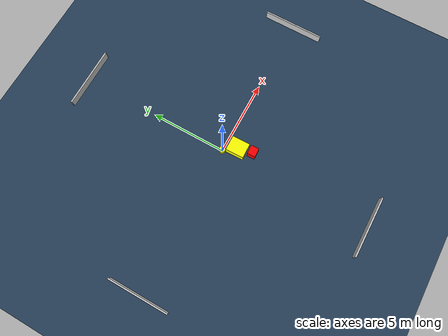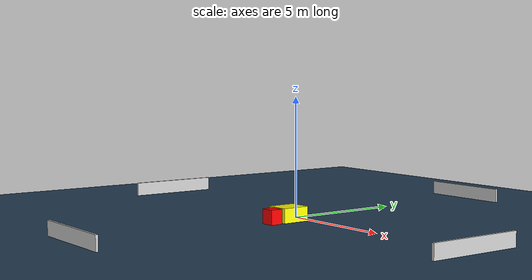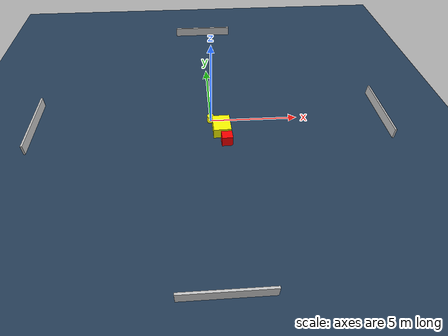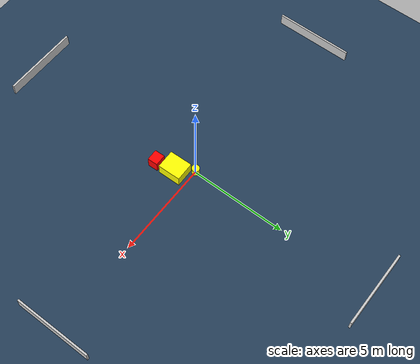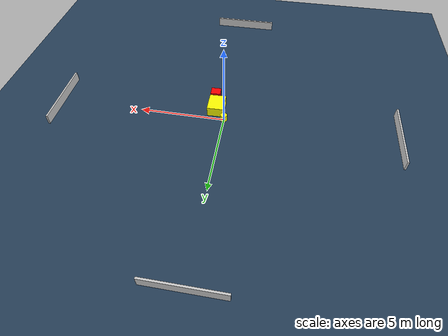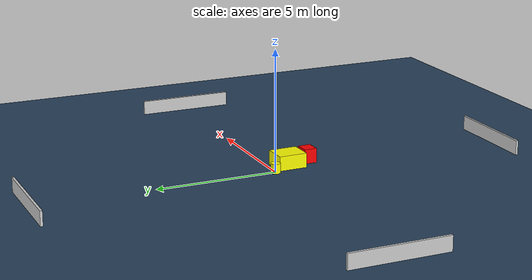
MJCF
<?xml version="1.0" ?>
<mujoco model="generated_environment">
  <option timestep="0.01" integrator="RK4" cone="elliptic"/>
  <default>
    <geom density="1"/>
  </default>
  <asset>
    <texture builtin="gradient" height="3072" name="skybox" rgb1="0.3 0.5 0.7" rgb2="0 0 0" type="skybox" width="512"/>
    <texture builtin="checker" height="300" name="groundplane" rgb1="0.2 0.3 0.4" rgb2="0.1 0.2 0.3" type="2d" width="300"/>
    <material name="groundplane" reflectance="0.2" texrepeat="5 5" texture="groundplane"/>
  </asset>
  <worldbody>
    <light dir="0 0 -1" directional="true" pos="0 0 1.5"/>
    <geom condim="3" friction="0.5 0.005 0.001" material="groundplane" name="floor" pos="0 0 0" size="0 0 0.05" type="plane"/>
    <body name="walls">
      <geom name="wall_1" condim="4" pos="-10.0 0.0 0.3" rgba="0.800000011920929 0.800000011920929 0.800000011920929 1.0" size="0.05 2.0 0.3" type="box"/>
      <geom name="wall_2" condim="4" pos="10.0 0.0 0.3" rgba="0.800000011920929 0.800000011920929 0.800000011920929 1.0" size="0.05 2.0 0.3" type="box"/>
      <geom name="wall_3" condim="4" pos="0.0 -10.0 0.3" rgba="0.800000011920929 0.800000011920929 0.800000011920929 1.0" size="2.0 0.05 0.3" type="box"/>
      <geom name="wall_4" condim="4" pos="0.0 10.0 0.3" rgba="0.800000011920929 0.800000011920929 0.800000011920929 1.0" size="2.0 0.05 0.3" type="box"/>
    </body>
    <body name="robot">
      <joint name="joint_x" type="slide" pos="0 0 0" axis="1 0 0"/>
      <joint name="joint_y" type="slide" pos="0 0 0" axis="0 1 0"/>
      <geom name="robot" type="cylinder" pos="0.0 0.0 0.2" size="0.2 0.2 0.0" mass="5.0" friction="1.0 0.005 0.0001" condim="4" rgba="1.0 1.0 0.0 1.0"/>
    </body>
    <body name="obstacle_1_movable">
      <geom name="obstacle_1_movable" condim="4" pos="0.5620139743801945 -0.8009826967080849 0.3" euler="0 0 91.23913136744204" friction="0.0 0.005 0.001" rgba="1.0 1.0 0.0 1.0" size="0.5909319714101836 0.4889885519063648 0.3" type="box" mass="0.1"/>
      <joint type="free"/>
    </body>
    <body name="obstacle_2_static">
      <geom name="obstacle_2_static" condim="4" pos="0.7787965473075382 -1.7705190711442362 0.3" euler="0 0 181.73689060045945" friction="0.0 0.005 0.001" rgba="1.0 0.0 0.0 1.0" size="0.2944136093693902 0.2630842300486361 0.3" type="box"/>
    </body>
  </worldbody>
  <actuator>
    <motor name="actuator_x" joint="joint_x" gear="1" ctrlrange="-1 1"/>
    <motor name="actuator_y" joint="joint_y" gear="1" ctrlrange="-1 1"/>
  </actuator>
</mujoco>
